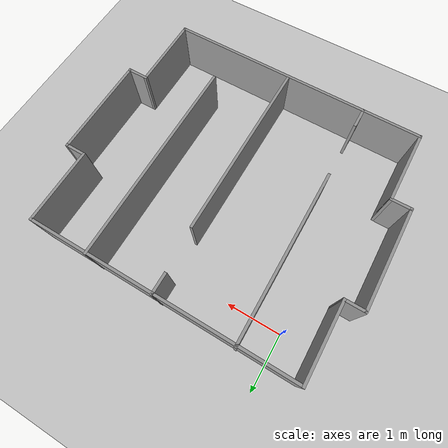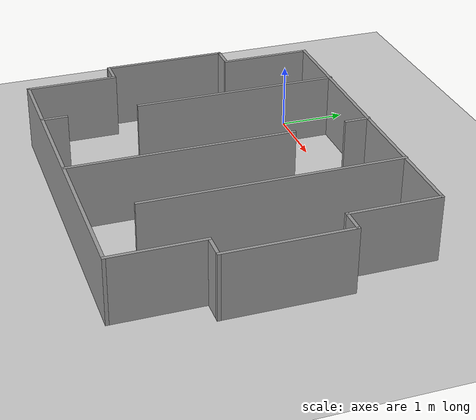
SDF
<sdf version="1.6">
 <world name="default">
  <light name="sun" type="directional">
   <pose>0 0 10 0 -0 0</pose>
   <diffuse>0.8 0.8 0.8 1</diffuse>
   <specular>0.2 0.2 0.2 1</specular>
   <attenuation>
    <range>1000</range>
    <constant>0.9</constant>
    <linear>0.01</linear>
    <quadratic>0.001</quadratic>
   </attenuation>
   <direction>-0.5 0.1 -0.9</direction>
  </light>
  <model name="ground_plane">
   <static>1</static>
   <link name="link">
    <collision name="collision">
     <geometry><plane><normal>0 0 1</normal><size>100 100</size></plane></geometry>
     <surface><friction><ode><mu>100</mu><mu2>50</mu2></ode></friction></surface>
    </collision>
    <visual name="visual">
     <cast_shadows>0</cast_shadows>
     <geometry><plane><normal>0 0 1</normal><size>100 100</size></plane></geometry>
     <material>
      <script><uri>file://media/materials/scripts/gazebo.material</uri><name>Gazebo/Grey</name></script>
     </material>
    </visual>
   </link>
  </model>
  <gravity>0 0 -9.8</gravity>
  <magnetic_field>6e-06 2.3e-05 -4.2e-05</magnetic_field>
  <atmosphere type="adiabatic"/>
  <physics name="default_physics" default="0" type="ode">
   <max_step_size>0.001</max_step_size>
   <real_time_factor>1</real_time_factor>
   <real_time_update_rate>1000</real_time_update_rate>
  </physics>
  <scene><ambient>0.4 0.4 0.4 1</ambient><background>0.7 0.7 0.7 1</background><shadows>1</shadows></scene>
  <spherical_coordinates>
   <surface_model>EARTH_WGS84</surface_model>
   <latitude_deg>0</latitude_deg>
   <longitude_deg>0</longitude_deg>
   <elevation>0</elevation>
   <heading_deg>0</heading_deg>
  </spherical_coordinates>
  <model name="rgarena2-2">
   <pose>1.88 -1.73 0 0 0 -1.5733</pose>
   <link name="Wall_0">
    <collision name="Wall_0_Collision">
     <geometry><box><size>4.9 0.05 1</size></box></geometry>
     <pose>0 0 0.5 0 -0 0</pose>
    </collision>
    <visual name="Wall_0_Visual">
     <pose>0 0 0.5 0 -0 0</pose>
     <geometry><box><size>4.9 0.05 1</size></box></geometry>
     <material>
      <script><uri>file://media/materials/scripts/gazebo.material</uri><name>Gazebo/Grey</name></script>
      <ambient>1 1 1 1</ambient>
     </material>
     <meta><layer>0</layer></meta>
    </visual>
    <pose>-2.26749 -0 0 0 -0 -1.5708</pose>
   </link>
   <link name="Wall_1">
    <collision name="Wall_1_Collision">
     <geometry><box><size>1.4 0.05 1</size></box></geometry>
     <pose>0 0 0.5 0 -0 0</pose>
    </collision>
    <visual name="Wall_1_Visual">
     <pose>0 0 0.5 0 -0 0</pose>
     <geometry><box><size>1.4 0.05 1</size></box></geometry>
     <material>
      <script><uri>file://media/materials/scripts/gazebo.material</uri><name>Gazebo/Grey</name></script>
      <ambient>1 1 1 1</ambient>
     </material>
     <meta><layer>0</layer></meta>
    </visual>
    <pose>-1.59249 -2.425 0 0 -0 0</pose>
   </link>
   <link name="Wall_13">
    <collision name="Wall_13_Collision">
     <geometry><box><size>1.9 0.05 1</size></box></geometry>
     <pose>0 0 0.5 0 -0 0</pose>
    </collision>
    <visual name="Wall_13_Visual">
     <pose>0 0 0.5 0 -0 0</pose>
     <geometry><box><size>1.9 0.05 1</size></box></geometry>
     <material>
      <script><uri>file://media/materials/scripts/gazebo.material</uri><name>Gazebo/Grey</name></script>
      <ambient>1 1 1 1</ambient>
     </material>
     <meta><layer>0</layer></meta>
    </visual>
    <pose>0.007506 2.775 0 0 -0 3.14159</pose>
   </link>
   <link name="Wall_14">
    <collision name="Wall_14_Collision">
     <geometry><box><size>0.4 0.05 1</size></box></geometry>
     <pose>0 0 0.5 0 -0 0</pose>
    </collision>
    <visual name="Wall_14_Visual">
     <pose>0 0 0.5 0 -0 0</pose>
     <geometry><box><size>0.4 0.05 1</size></box></geometry>
     <material>
      <script><uri>file://media/materials/scripts/gazebo.material</uri><name>Gazebo/Grey</name></script>
      <ambient>1 1 1 1</ambient>
     </material>
     <meta><layer>0</layer></meta>
    </visual>
    <pose>-0.917494 2.6 0 0 -0 -1.5708</pose>
   </link>
   <link name="Wall_15">
    <collision name="Wall_15_Collision">
     <geometry><box><size>1.4 0.05 1</size></box></geometry>
     <pose>0 0 0.5 0 -0 0</pose>
    </collision>
    <visual name="Wall_15_Visual">
     <pose>0 0 0.5 0 -0 0</pose>
     <geometry><box><size>1.4 0.05 1</size></box></geometry>
     <material>
      <script><uri>file://media/materials/scripts/gazebo.material</uri><name>Gazebo/Grey</name></script>
      <ambient>1 1 1 1</ambient>
     </material>
     <meta><layer>0</layer></meta>
    </visual>
    <pose>-1.59249 2.425 0 0 -0 3.14159</pose>
   </link>
   <link name="Wall_2">
    <collision name="Wall_2_Collision">
     <geometry><box><size>0.4 0.05 1</size></box></geometry>
     <pose>0 0 0.5 0 -0 0</pose>
    </collision>
    <visual name="Wall_2_Visual">
     <pose>0 0 0.5 0 -0 0</pose>
     <geometry><box><size>0.4 0.05 1</size></box></geometry>
     <material>
      <script><uri>file://media/materials/scripts/gazebo.material</uri><name>Gazebo/Grey</name></script>
      <ambient>1 1 1 1</ambient>
     </material>
     <meta><layer>0</layer></meta>
    </visual>
    <pose>-0.917494 -2.6 0 0 -0 -1.5708</pose>
   </link>
   <link name="Wall_3">
    <collision name="Wall_3_Collision">
     <geometry><box><size>1.9 0.05 1</size></box></geometry>
     <pose>0 0 0.5 0 -0 0</pose>
    </collision>
    <visual name="Wall_3_Visual">
     <pose>0 0 0.5 0 -0 0</pose>
     <geometry><box><size>1.9 0.05 1</size></box></geometry>
     <material>
      <script><uri>file://media/materials/scripts/gazebo.material</uri><name>Gazebo/Grey</name></script>
      <ambient>1 1 1 1</ambient>
     </material>
     <meta><layer>0</layer></meta>
    </visual>
    <pose>0.007506 -2.775 0 0 -0 0</pose>
   </link>
   <link name="Wall_32">
    <collision name="Wall_32_Collision">
     <geometry><box><size>3.15002 0.05 1</size></box></geometry>
     <pose>0 0 0.5 0 -0 0</pose>
    </collision>
    <visual name="Wall_32_Visual">
     <pose>0 0 0.5 0 -0 0</pose>
     <geometry><box><size>3.15002 0.05 1</size></box></geometry>
     <material>
      <script><uri>file://media/materials/scripts/gazebo.material</uri><name>Gazebo/Grey</name></script>
      <ambient>1 1 1 1</ambient>
     </material>
     <meta><layer>0</layer></meta>
    </visual>
    <pose>-0.732494 -1.36 0 0 -0 0</pose>
   </link>
   <link name="Wall_34">
    <collision name="Wall_34_Collision">
     <geometry><box><size>0.4 0.05 1</size></box></geometry>
     <pose>0 0 0.5 0 -0 0</pose>
    </collision>
    <visual name="Wall_34_Visual">
     <pose>0 0 0.5 0 -0 0</pose>
     <geometry><box><size>0.4 0.05 1</size></box></geometry>
     <material>
      <script><uri>file://media/materials/scripts/gazebo.material</uri><name>Gazebo/Grey</name></script>
      <ambient>1 1 1 1</ambient>
     </material>
     <meta><layer>0</layer></meta>
    </visual>
    <pose>2.106 -1.35244 0 0 -0 0</pose>
   </link>
   <link name="Wall_36">
    <collision name="Wall_36_Collision">
     <geometry><box><size>0.400433 0.05 1</size></box></geometry>
     <pose>0 0 0.5 0 -0 0</pose>
    </collision>
    <visual name="Wall_36_Visual">
     <pose>0 0 0.5 0 -0 0</pose>
     <geometry><box><size>0.400433 0.05 1</size></box></geometry>
     <material>
      <script><uri>file://media/materials/scripts/gazebo.material</uri><name>Gazebo/Grey</name></script>
      <ambient>1 1 1 1</ambient>
     </material>
     <meta><layer>0</layer></meta>
    </visual>
    <pose>-2.10149 0.088 0 0 -0 0</pose>
   </link>
   <link name="Wall_38">
    <collision name="Wall_38_Collision">
     <geometry><box><size>3.39968 0.05 1</size></box></geometry>
     <pose>0 0 0.5 0 -0 0</pose>
    </collision>
    <visual name="Wall_38_Visual">
     <pose>0 0 0.5 0 -0 0</pose>
     <geometry><box><size>3.39968 0.05 1</size></box></geometry>
     <material>
      <script><uri>file://media/materials/scripts/gazebo.material</uri><name>Gazebo/Grey</name></script>
      <ambient>1 1 1 1</ambient>
     </material>
     <meta><layer>0</layer></meta>
    </visual>
    <pose>0.589505 0.14 0 0 -0 0</pose>
   </link>
   <link name="Wall_4">
    <collision name="Wall_4_Collision">
     <geometry><box><size>0.4 0.05 1</size></box></geometry>
     <pose>0 0 0.5 0 -0 0</pose>
    </collision>
    <visual name="Wall_4_Visual">
     <pose>0 0 0.5 0 -0 0</pose>
     <geometry><box><size>0.4 0.05 1</size></box></geometry>
     <material>
      <script><uri>file://media/materials/scripts/gazebo.material</uri><name>Gazebo/Grey</name></script>
      <ambient>1 1 1 1</ambient>
     </material>
     <meta><layer>0</layer></meta>
    </visual>
    <pose>0.932505 -2.6 0 0 -0 1.5708</pose>
   </link>
   <link name="Wall_40">
    <collision name="Wall_40_Collision">
     <geometry><box><size>3.90043 0.05 1</size></box></geometry>
     <pose>0 0 0.5 0 -0 0</pose>
    </collision>
    <visual name="Wall_40_Visual">
     <pose>0 0 0.5 0 -0 0</pose>
     <geometry><box><size>3.90043 0.05 1</size></box></geometry>
     <material>
      <script><uri>file://media/materials/scripts/gazebo.material</uri><name>Gazebo/Grey</name></script>
      <ambient>1 1 1 1</ambient>
     </material>
     <meta><layer>0</layer></meta>
    </visual>
    <pose>-0.351494 1.331 0 0 -0 0</pose>
   </link>
   <link name="Wall_5">
    <collision name="Wall_5_Collision">
     <geometry><box><size>1.4 0.05 1</size></box></geometry>
     <pose>0 0 0.5 0 -0 0</pose>
    </collision>
    <visual name="Wall_5_Visual">
     <pose>0 0 0.5 0 -0 0</pose>
     <geometry><box><size>1.4 0.05 1</size></box></geometry>
     <material>
      <script><uri>file://media/materials/scripts/gazebo.material</uri><name>Gazebo/Grey</name></script>
      <ambient>1 1 1 1</ambient>
     </material>
     <meta><layer>0</layer></meta>
    </visual>
    <pose>1.6075 -2.425 0 0 -0 0</pose>
   </link>
   <link name="Wall_6">
    <collision name="Wall_6_Collision">
     <geometry><box><size>4.9 0.05 1</size></box></geometry>
     <pose>0 0 0.5 0 -0 0</pose>
    </collision>
    <visual name="Wall_6_Visual">
     <pose>0 0 0.5 0 -0 0</pose>
     <geometry><box><size>4.9 0.05 1</size></box></geometry>
     <material>
      <script><uri>file://media/materials/scripts/gazebo.material</uri><name>Gazebo/Grey</name></script>
      <ambient>1 1 1 1</ambient>
     </material>
     <meta><layer>0</layer></meta>
    </visual>
    <pose>2.28251 -0 0 0 -0 1.5708</pose>
   </link>
   <link name="Wall_7">
    <collision name="Wall_7_Collision">
     <geometry><box><size>1.4 0.05 1</size></box></geometry>
     <pose>0 0 0.5 0 -0 0</pose>
    </collision>
    <visual name="Wall_7_Visual">
     <pose>0 0 0.5 0 -0 0</pose>
     <geometry><box><size>1.4 0.05 1</size></box></geometry>
     <material>
      <script><uri>file://media/materials/scripts/gazebo.material</uri><name>Gazebo/Grey</name></script>
      <ambient>1 1 1 1</ambient>
     </material>
     <meta><layer>0</layer></meta>
    </visual>
    <pose>1.6075 2.425 0 0 -0 3.14159</pose>
   </link>
   <link name="Wall_9">
    <collision name="Wall_9_Collision">
     <geometry><box><size>0.4 0.05 1</size></box></geometry>
     <pose>0 0 0.5 0 -0 0</pose>
    </collision>
    <visual name="Wall_9_Visual">
     <pose>0 0 0.5 0 -0 0</pose>
     <geometry><box><size>0.4 0.05 1</size></box></geometry>
     <material>
      <script><uri>file://media/materials/scripts/gazebo.material</uri><name>Gazebo/Grey</name></script>
      <ambient>1 1 1 1</ambient>
     </material>
     <meta><layer>0</layer></meta>
    </visual>
    <pose>0.932505 2.6 0 0 -0 1.5708</pose>
   </link>
   <static>1</static>
  </model>
 </world>
</sdf>
